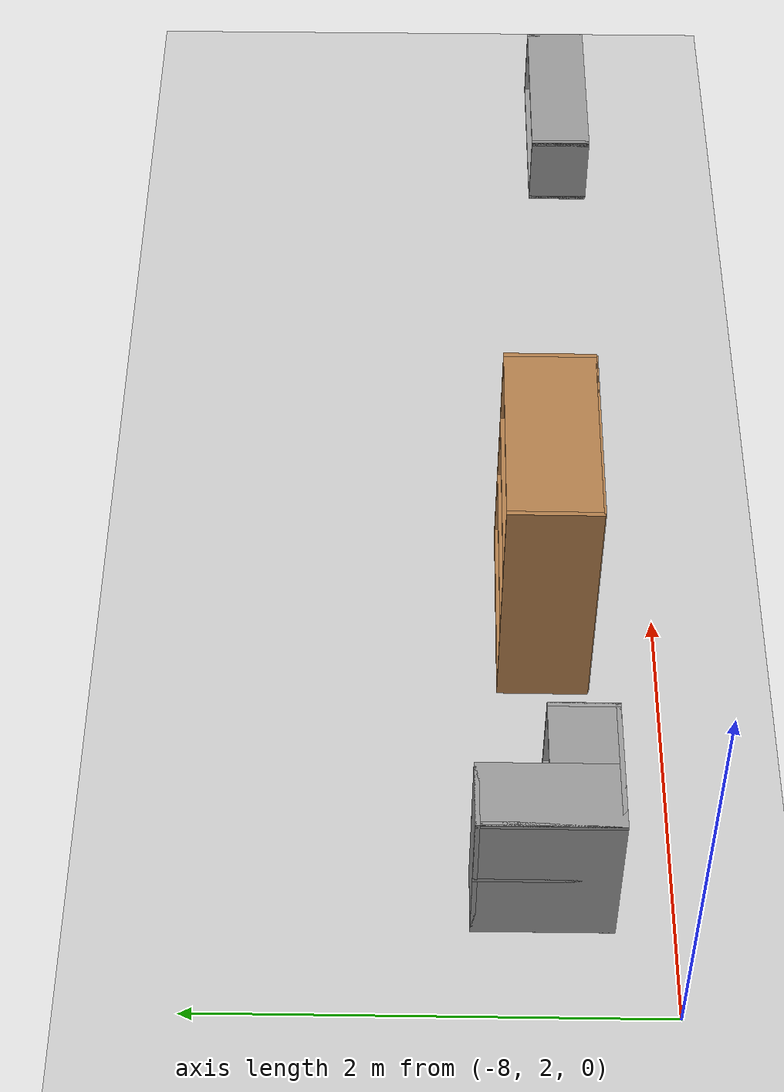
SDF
<sdf version="1.7">
 <world name="default">
  <model name="ground_plane">
   <static>1</static>
   <link name="link">
    <collision name="collision">
     <geometry><plane><normal>0 0 1</normal><size>100 100</size></plane></geometry>
     <surface><friction><ode><mu>100</mu><mu2>50</mu2></ode></friction></surface>
    </collision>
    <visual name="visual">
     <cast_shadows>0</cast_shadows>
     <geometry><plane><normal>0 0 1</normal><size>100 100</size></plane></geometry>
     <material>
      <script><uri>file://media/materials/scripts/gazebo.material</uri><name>Gazebo/Grey</name></script>
     </material>
    </visual>
   </link>
  </model>
  <model name="Wall_Cabinet_36x15W">
   <link name="Wall_0">
    <pose>0 0 0.01 0 -0 0</pose>
    <inertial>
     <mass>1.9796</mass>
     <inertia><ixx>0.0145</ixx><iyy>0.1511</iyy><izz>0.1367</izz><ixy>0</ixy><ixz>0</ixz><iyz>0</iyz></inertia>
    </inertial>
    <collision name="Wall_0_Collision"><geometry><box><size>0.91 0.296 0.02</size></box></geometry></collision>
    <visual name="Wall_0_Visual">
     <geometry><box><size>0.91 0.296 0.02</size></box></geometry>
     <material>
      <script><uri>file://media/materials/scripts/gazebo.material</uri><name>Gazebo/Grey</name></script>
      <ambient>1 1 1 1</ambient>
     </material>
    </visual>
   </link>
   <joint name="0_2" type="fixed">
    <pose>-0.455 0 0 0 -0 0</pose>
    <parent>Wall_2</parent>
    <child>Wall_0</child>
    <axis><xyz>0 0 1</xyz><limit><lower>-1e+16</lower><upper>1e+16</upper></limit></axis>
   </joint>
   <joint name="0_4" type="fixed">
    <pose>0.455 0 0 0 -0 0</pose>
    <parent>Wall_4</parent>
    <child>Wall_0</child>
    <axis><xyz>0 0 1</xyz><limit><lower>-1e+16</lower><upper>1e+16</upper></limit></axis>
   </joint>
   <joint name="0_8" type="fixed">
    <pose>0 -0.148 0 0 -0 0</pose>
    <parent>Wall_8</parent>
    <child>Wall_0</child>
    <axis><xyz>0 0 1</xyz><limit><lower>-1e+16</lower><upper>1e+16</upper></limit></axis>
   </joint>
   <link name="Wall_2">
    <pose>-0.445 0 0.192 0 -0 0</pose>
    <inertial>
     <mass>0.8353</mass>
     <inertia><ixx>0.0061</ixx><iyy>0.0164</iyy><izz>0.0103</izz><ixy>0</ixy><ixz>0</ixz><iyz>0</iyz></inertia>
    </inertial>
    <collision name="Wall_2_Collision"><geometry><box><size>0.02 0.296 0.384</size></box></geometry></collision>
    <visual name="Wall_2_Visual">
     <geometry><box><size>0.02 0.296 0.384</size></box></geometry>
     <material>
      <script><uri>file://media/materials/scripts/gazebo.material</uri><name>Gazebo/Grey</name></script>
      <ambient>1 1 1 1</ambient>
     </material>
    </visual>
   </link>
   <link name="Wall_4">
    <pose>0.445 0 0.192 0 -0 0</pose>
    <inertial>
     <mass>0.8353</mass>
     <inertia><ixx>0.0061</ixx><iyy>0.0164</iyy><izz>0.0103</izz><ixy>0</ixy><ixz>0</ixz><iyz>0</iyz></inertia>
    </inertial>
    <collision name="Wall_4_Collision"><geometry><box><size>0.02 0.296 0.384</size></box></geometry></collision>
    <visual name="Wall_4_Visual">
     <geometry><box><size>0.02 0.296 0.384</size></box></geometry>
     <material>
      <script><uri>file://media/materials/scripts/gazebo.material</uri><name>Gazebo/Grey</name></script>
      <ambient>1 1 1 1</ambient>
     </material>
    </visual>
   </link>
   <link name="Wall_6">
    <pose>0 0 0.374 0 -0 0</pose>
    <inertial>
     <mass>1.9796</mass>
     <inertia><ixx>0.0145</ixx><iyy>0.1511</iyy><izz>0.1367</izz><ixy>0</ixy><ixz>0</ixz><iyz>0</iyz></inertia>
    </inertial>
    <collision name="Wall_6_Collision"><geometry><box><size>0.91 0.296 0.02</size></box></geometry></collision>
    <visual name="Wall_6_Visual">
     <geometry><box><size>0.91 0.296 0.02</size></box></geometry>
     <material>
      <script><uri>file://media/materials/scripts/gazebo.material</uri><name>Gazebo/Grey</name></script>
      <ambient>1 1 1 1</ambient>
     </material>
    </visual>
   </link>
   <joint name="6_2" type="fixed">
    <pose>-0.455 0 0 0 -0 0</pose>
    <parent>Wall_2</parent>
    <child>Wall_6</child>
    <axis><xyz>0 0 1</xyz><limit><lower>-1e+16</lower><upper>1e+16</upper></limit></axis>
   </joint>
   <joint name="6_4" type="fixed">
    <pose>0.455 0 0 0 -0 0</pose>
    <parent>Wall_4</parent>
    <child>Wall_6</child>
    <axis><xyz>0 0 1</xyz><limit><lower>-1e+16</lower><upper>1e+16</upper></limit></axis>
   </joint>
   <joint name="6_8" type="fixed">
    <pose>0 -0.148 0 0 -0 0</pose>
    <parent>Wall_8</parent>
    <child>Wall_6</child>
    <axis><xyz>0 0 1</xyz><limit><lower>-1e+16</lower><upper>1e+16</upper></limit></axis>
   </joint>
   <link name="Wall_8">
    <pose>0 -0.138 0.19 0 -0 0</pose>
    <inertial>
     <mass>2.5302</mass>
     <inertia><ixx>0.0305</ixx><iyy>0.1732</iyy><izz>0.2035</izz><ixy>0</ixy><ixz>0</ixz><iyz>0</iyz></inertia>
    </inertial>
    <collision name="Wall_8_Collision"><geometry><box><size>0.906 0.02 0.38</size></box></geometry></collision>
    <visual name="Wall_8_Visual">
     <geometry><box><size>0.906 0.02 0.38</size></box></geometry>
     <material>
      <script><uri>file://media/materials/scripts/gazebo.material</uri><name>Gazebo/Grey</name></script>
      <ambient>1 1 1 1</ambient>
     </material>
    </visual>
   </link>
   <joint name="8_2" type="fixed">
    <pose>-0.453 0 0 0 -0 0</pose>
    <parent>Wall_2</parent>
    <child>Wall_8</child>
    <axis><xyz>0 1 0</xyz><limit><lower>-1e+16</lower><upper>1e+16</upper></limit></axis>
   </joint>
   <joint name="8_4" type="fixed">
    <pose>0.453 0 0 0 -0 0</pose>
    <parent>Wall_4</parent>
    <child>Wall_8</child>
    <axis><xyz>0 1 0</xyz><limit><lower>-1e+16</lower><upper>1e+16</upper></limit></axis>
   </joint>
   <static>1</static>
   <pose>-2.68214 2.32688 0 0 -0 0</pose>
  </model>
  <model name="Wall_Cabinet_Coin_24x30W_clone">
   <link name="Wall_10">
    <pose>0.286 -0.148 0.384 0 -0 0</pose>
    <inertial>
     <mass>2.1259</mass>
     <inertia><ixx>0.0158</ixx><iyy>0.1202</iyy><izz>0.1046</izz><ixy>0</ixy><ixz>0</ixz><iyz>0</iyz></inertia>
    </inertial>
    <collision name="Wall_10_Collision"><geometry><box><size>0.02 0.296 0.768</size></box></geometry></collision>
    <visual name="Wall_10_Visual">
     <geometry><box><size>0.02 0.296 0.768</size></box></geometry>
     <material>
      <script><uri>file://media/materials/scripts/gazebo.material</uri><name>Gazebo/Grey</name></script>
      <ambient>1 1 1 1</ambient>
     </material>
    </visual>
   </link>
   <joint name="10_16" type="fixed">
    <pose>0 0 -0.374 0 -0 0</pose>
    <parent>Wall_16</parent>
    <child>Wall_10</child>
    <axis><xyz>1 0 0</xyz><limit><lower>-1e+16</lower><upper>1e+16</upper></limit></axis>
   </joint>
   <joint name="10_14" type="fixed">
    <parent>Wall_14</parent>
    <child>Wall_10</child>
    <axis><xyz>1 0 0</xyz><limit><lower>-1e+16</lower><upper>1e+16</upper></limit></axis>
   </joint>
   <joint name="10_12" type="fixed">
    <pose>0 0 0.374 0 -0 0</pose>
    <parent>Wall_12</parent>
    <child>Wall_10</child>
    <axis><xyz>1 0 0</xyz><limit><lower>-1e+16</lower><upper>1e+16</upper></limit></axis>
   </joint>
   <joint name="10_29" type="fixed">
    <pose>0 -0.148 0 0 -0 0</pose>
    <parent>Wall_29</parent>
    <child>Wall_10</child>
    <axis><xyz>1 0 0</xyz><limit><lower>-1e+16</lower><upper>1e+16</upper></limit></axis>
   </joint>
   <link name="Wall_12">
    <pose>0.148 -0.148 0.758 0 -0 0</pose>
    <inertial>
     <mass>0.8802</mass>
     <inertia><ixx>0.0065</ixx><iyy>0.0139</iyy><izz>0.0074</izz><ixy>0</ixy><ixz>0</ixz><iyz>0</iyz></inertia>
    </inertial>
    <collision name="Wall_12_Collision"><geometry><box><size>0.296 0.296 0.02</size></box></geometry></collision>
    <visual name="Wall_12_Visual">
     <geometry><box><size>0.296 0.296 0.02</size></box></geometry>
     <material>
      <script><uri>file://media/materials/scripts/gazebo.material</uri><name>Gazebo/Grey</name></script>
      <ambient>1 1 1 1</ambient>
     </material>
    </visual>
   </link>
   <joint name="12_29" type="fixed">
    <pose>0 -0.148 0 0 -0 0</pose>
    <parent>Wall_29</parent>
    <child>Wall_12</child>
    <axis><xyz>0 0 1</xyz><limit><lower>-1e+16</lower><upper>1e+16</upper></limit></axis>
   </joint>
   <link name="Wall_14">
    <pose>0.148 -0.148 0.384 0 -0 0</pose>
    <inertial>
     <mass>0.8802</mass>
     <inertia><ixx>0.0065</ixx><iyy>0.0139</iyy><izz>0.0074</izz><ixy>0</ixy><ixz>0</ixz><iyz>0</iyz></inertia>
    </inertial>
    <collision name="Wall_14_Collision"><geometry><box><size>0.296 0.296 0.02</size></box></geometry></collision>
    <visual name="Wall_14_Visual">
     <geometry><box><size>0.296 0.296 0.02</size></box></geometry>
     <material>
      <script><uri>file://media/materials/scripts/gazebo.material</uri><name>Gazebo/Grey</name></script>
      <ambient>1 1 1 1</ambient>
     </material>
    </visual>
   </link>
   <joint name="14_29" type="fixed">
    <pose>0 -0.148 0 0 -0 0</pose>
    <parent>Wall_29</parent>
    <child>Wall_14</child>
    <axis><xyz>0 1 0</xyz><limit><lower>-1e+16</lower><upper>1e+16</upper></limit></axis>
   </joint>
   <link name="Wall_16">
    <pose>0.148 -0.148 0.01 0 -0 0</pose>
    <inertial>
     <mass>0.8802</mass>
     <inertia><ixx>0.0065</ixx><iyy>0.0139</iyy><izz>0.0074</izz><ixy>0</ixy><ixz>0</ixz><iyz>0</iyz></inertia>
    </inertial>
    <collision name="Wall_16_Collision"><geometry><box><size>0.296 0.296 0.02</size></box></geometry></collision>
    <visual name="Wall_16_Visual">
     <geometry><box><size>0.296 0.296 0.02</size></box></geometry>
     <material>
      <script><uri>file://media/materials/scripts/gazebo.material</uri><name>Gazebo/Grey</name></script>
      <ambient>1 1 1 1</ambient>
     </material>
    </visual>
   </link>
   <joint name="16_29" type="fixed">
    <pose>0 -0.148 0 0 -0 0</pose>
    <parent>Wall_29</parent>
    <child>Wall_16</child>
    <axis><xyz>0 1 0</xyz><limit><lower>-1e+16</lower><upper>1e+16</upper></limit></axis>
   </joint>
   <link name="Wall_18">
    <pose>-0.148 0 0.01 0 -0 0</pose>
    <inertial>
     <mass>1.6525</mass>
     <inertia><ixx>0.0491</ixx><iyy>0.0613</iyy><izz>0.0123</izz><ixy>0</ixy><ixz>0</ixz><iyz>0</iyz></inertia>
    </inertial>
    <collision name="Wall_18_Collision"><geometry><box><size>0.296 0.592 0.02</size></box></geometry></collision>
    <visual name="Wall_18_Visual">
     <geometry><box><size>0.296 0.592 0.02</size></box></geometry>
     <material>
      <script><uri>file://media/materials/scripts/gazebo.material</uri><name>Gazebo/Grey</name></script>
      <ambient>1 1 1 1</ambient>
     </material>
    </visual>
   </link>
   <joint name="18_16" type="fixed">
    <pose>0.148 -0.148 0 0 -0 0</pose>
    <parent>Wall_16</parent>
    <child>Wall_18</child>
    <axis><xyz>1 0 0</xyz><limit><lower>-1e+16</lower><upper>1e+16</upper></limit></axis>
   </joint>
   <joint name="18_29" type="fixed">
    <pose>0 -0.296 0 0 -0 0</pose>
    <parent>Wall_29</parent>
    <child>Wall_18</child>
    <axis><xyz>0 1 0</xyz><limit><lower>-1e+16</lower><upper>1e+16</upper></limit></axis>
   </joint>
   <joint name="18_27" type="fixed">
    <pose>-0.148 0 0 0 -0 0</pose>
    <parent>Wall_27</parent>
    <child>Wall_18</child>
    <axis><xyz>1 0 0</xyz><limit><lower>-1e+16</lower><upper>1e+16</upper></limit></axis>
   </joint>
   <joint name="18_30" type="fixed">
    <pose>0 0.296 0 0 -0 0</pose>
    <parent>Wall_30</parent>
    <child>Wall_18</child>
    <axis><xyz>0 1 0</xyz><limit><lower>-1e+16</lower><upper>1e+16</upper></limit></axis>
   </joint>
   <link name="Wall_20">
    <pose>-0.148 0 0.384 0 -0 0</pose>
    <inertial>
     <mass>1.6525</mass>
     <inertia><ixx>0.0491</ixx><iyy>0.0613</iyy><izz>0.0123</izz><ixy>0</ixy><ixz>0</ixz><iyz>0</iyz></inertia>
    </inertial>
    <collision name="Wall_20_Collision"><geometry><box><size>0.296 0.592 0.02</size></box></geometry></collision>
    <visual name="Wall_20_Visual">
     <geometry><box><size>0.296 0.592 0.02</size></box></geometry>
     <material>
      <script><uri>file://media/materials/scripts/gazebo.material</uri><name>Gazebo/Grey</name></script>
      <ambient>1 1 1 1</ambient>
     </material>
    </visual>
   </link>
   <joint name="20_14" type="fixed">
    <pose>0.148 -0.148 0 0 -0 0</pose>
    <parent>Wall_14</parent>
    <child>Wall_20</child>
    <axis><xyz>1 0 0</xyz><limit><lower>-1e+16</lower><upper>1e+16</upper></limit></axis>
   </joint>
   <joint name="20_29" type="fixed">
    <pose>0 -0.296 0 0 -0 0</pose>
    <parent>Wall_29</parent>
    <child>Wall_20</child>
    <axis><xyz>0 1 0</xyz><limit><lower>-1e+16</lower><upper>1e+16</upper></limit></axis>
   </joint>
   <joint name="20_27" type="fixed">
    <pose>-0.148 0 0 0 -0 0</pose>
    <parent>Wall_27</parent>
    <child>Wall_20</child>
    <axis><xyz>1 0 0</xyz><limit><lower>-1e+16</lower><upper>1e+16</upper></limit></axis>
   </joint>
   <joint name="20_30" type="fixed">
    <pose>0 0.296 0 0 -0 0</pose>
    <parent>Wall_30</parent>
    <child>Wall_20</child>
    <axis><xyz>0 1 0</xyz><limit><lower>-1e+16</lower><upper>1e+16</upper></limit></axis>
   </joint>
   <link name="Wall_22">
    <pose>-0.148 0 0.758 0 -0 0</pose>
    <inertial>
     <mass>1.6525</mass>
     <inertia><ixx>0.0491</ixx><iyy>0.0613</iyy><izz>0.0123</izz><ixy>0</ixy><ixz>0</ixz><iyz>0</iyz></inertia>
    </inertial>
    <collision name="Wall_22_Collision"><geometry><box><size>0.296 0.592 0.02</size></box></geometry></collision>
    <visual name="Wall_22_Visual">
     <geometry><box><size>0.296 0.592 0.02</size></box></geometry>
     <material>
      <script><uri>file://media/materials/scripts/gazebo.material</uri><name>Gazebo/Grey</name></script>
      <ambient>1 1 1 1</ambient>
     </material>
    </visual>
   </link>
   <joint name="22_12" type="fixed">
    <pose>0.148 -0.148 0 0 -0 0</pose>
    <parent>Wall_12</parent>
    <child>Wall_22</child>
    <axis><xyz>1 0 0</xyz><limit><lower>-1e+16</lower><upper>1e+16</upper></limit></axis>
   </joint>
   <joint name="22_29" type="fixed">
    <pose>0 -0.296 0 0 -0 0</pose>
    <parent>Wall_29</parent>
    <child>Wall_22</child>
    <axis><xyz>0 1 0</xyz><limit><lower>-1e+16</lower><upper>1e+16</upper></limit></axis>
   </joint>
   <joint name="22_27" type="fixed">
    <pose>-0.148 0 0 0 -0 0</pose>
    <parent>Wall_27</parent>
    <child>Wall_22</child>
    <axis><xyz>1 0 0</xyz><limit><lower>-1e+16</lower><upper>1e+16</upper></limit></axis>
   </joint>
   <joint name="22_30" type="fixed">
    <pose>0 0.296 0 0 -0 0</pose>
    <parent>Wall_30</parent>
    <child>Wall_22</child>
    <axis><xyz>0 1 0</xyz><limit><lower>-1e+16</lower><upper>1e+16</upper></limit></axis>
   </joint>
   <link name="Wall_27">
    <pose>-0.286 0 0.384 0 -0 0</pose>
    <inertial>
     <mass>4.2589</mass>
     <inertia><ixx>0.1266</ixx><iyy>0.3358</iyy><izz>0.2095</izz><ixy>0</ixy><ixz>0</ixz><iyz>0</iyz></inertia>
    </inertial>
    <collision name="Wall_27_Collision"><geometry><box><size>0.02 0.592 0.768</size></box></geometry></collision>
    <visual name="Wall_27_Visual">
     <geometry><box><size>0.02 0.592 0.768</size></box></geometry>
     <material>
      <script><uri>file://media/materials/scripts/gazebo.material</uri><name>Gazebo/Grey</name></script>
      <ambient>1 1 1 1</ambient>
     </material>
    </visual>
   </link>
   <joint name="27_30" type="fixed">
    <pose>0 0.296 0 0 -0 0</pose>
    <parent>Wall_30</parent>
    <child>Wall_27</child>
    <axis><xyz>0 1 0</xyz><limit><lower>-1e+16</lower><upper>1e+16</upper></limit></axis>
   </joint>
   <link name="Wall_29">
    <pose>0 -0.286 0.384 0 -0 0</pose>
    <inertial>
     <mass>4.3176</mass>
     <inertia><ixx>0.134</ixx><iyy>0.2091</iyy><izz>0.3428</izz><ixy>0</ixy><ixz>0</ixz><iyz>0</iyz></inertia>
    </inertial>
    <collision name="Wall_29_Collision"><geometry><box><size>0.592 0.02 0.768</size></box></geometry></collision>
    <visual name="Wall_29_Visual">
     <geometry><box><size>0.592 0.02 0.768</size></box></geometry>
     <material>
      <script><uri>file://media/materials/scripts/gazebo.material</uri><name>Gazebo/Grey</name></script>
      <ambient>1 1 1 1</ambient>
     </material>
    </visual>
   </link>
   <link name="Wall_30">
    <pose>-0.148 0.286 0.384 0 -0 0</pose>
    <inertial>
     <mass>2.1093</mass>
     <inertia><ixx>0.1021</ixx><iyy>0.0157</iyy><izz>0.1177</izz><ixy>0</ixy><ixz>0</ixz><iyz>0</iyz></inertia>
    </inertial>
    <collision name="Wall_30_Collision"><geometry><box><size>0.296 0.02 0.768</size></box></geometry></collision>
    <visual name="Wall_30_Visual">
     <geometry><box><size>0.296 0.02 0.768</size></box></geometry>
     <material>
      <script><uri>file://media/materials/scripts/gazebo.material</uri><name>Gazebo/Grey</name></script>
      <ambient>1 1 1 1</ambient>
     </material>
    </visual>
   </link>
   <static>1</static>
   <pose>-7.31291 2.54083 0 0 -0 0</pose>
  </model>
  <model name="bookshelf">
   <static>1</static>
   <link name="link">
    <inertial><mass>1</mass></inertial>
    <collision name="back">
     <pose>0 0.005 0.6 0 -0 0</pose>
     <geometry><box><size>0.9 0.01 1.2</size></box></geometry>
    </collision>
    <visual name="visual1">
     <pose>0 0.005 0.6 0 -0 0</pose>
     <geometry><box><size>0.9 0.01 1.2</size></box></geometry>
     <material>
      <script><uri>file://media/materials/scripts/gazebo.material</uri><name>Gazebo/Wood</name></script>
     </material>
    </visual>
    <collision name="left_side">
     <pose>0.45 -0.195 0.6 0 -0 0</pose>
     <geometry><box><size>0.02 0.4 1.2</size></box></geometry>
    </collision>
    <visual name="visual2">
     <pose>0.45 -0.195 0.6 0 -0 0</pose>
     <geometry><box><size>0.02 0.4 1.2</size></box></geometry>
     <material>
      <script><uri>file://media/materials/scripts/gazebo.material</uri><name>Gazebo/Wood</name></script>
     </material>
    </visual>
    <collision name="right_side">
     <pose>-0.45 -0.195 0.6 0 -0 0</pose>
     <geometry><box><size>0.02 0.4 1.2</size></box></geometry>
    </collision>
    <visual name="visual3">
     <pose>-0.45 -0.195 0.6 0 -0 0</pose>
     <geometry><box><size>0.02 0.4 1.2</size></box></geometry>
     <material>
      <script><uri>file://media/materials/scripts/gazebo.material</uri><name>Gazebo/Wood</name></script>
     </material>
    </visual>
    <collision name="bottom">
     <pose>0 -0.195 0.03 0 -0 0</pose>
     <geometry><box><size>0.88 0.4 0.06</size></box></geometry>
    </collision>
    <visual name="visual4">
     <pose>0 -0.195 0.03 0 -0 0</pose>
     <geometry><box><size>0.88 0.4 0.06</size></box></geometry>
     <material>
      <script><uri>file://media/materials/scripts/gazebo.material</uri><name>Gazebo/Wood</name></script>
     </material>
    </visual>
    <collision name="top">
     <pose>0 -0.195 1.19 0 -0 0</pose>
     <geometry><box><size>0.88 0.4 0.02</size></box></geometry>
    </collision>
    <visual name="visual5">
     <pose>0 -0.195 1.19 0 -0 0</pose>
     <geometry><box><size>0.88 0.4 0.02</size></box></geometry>
     <material>
      <script><uri>file://media/materials/scripts/gazebo.material</uri><name>Gazebo/Wood</name></script>
     </material>
    </visual>
    <collision name="low_shelf">
     <pose>0 -0.195 0.43 0 -0 0</pose>
     <geometry><box><size>0.88 0.4 0.02</size></box></geometry>
    </collision>
    <visual name="visual6">
     <pose>0 -0.195 0.43 0 -0 0</pose>
     <geometry><box><size>0.88 0.4 0.02</size></box></geometry>
     <material>
      <script><uri>file://media/materials/scripts/gazebo.material</uri><name>Gazebo/Wood</name></script>
     </material>
    </visual>
    <collision name="high_shelf">
     <pose>0 -0.195 0.8 0 -0 0</pose>
     <geometry><box><size>0.88 0.4 0.02</size></box></geometry>
    </collision>
    <visual name="visual7">
     <pose>0 -0.195 0.8 0 -0 0</pose>
     <geometry><box><size>0.88 0.4 0.02</size></box></geometry>
     <material>
      <script><uri>file://media/materials/scripts/gazebo.material</uri><name>Gazebo/Wood</name></script>
     </material>
    </visual>
   </link>
   <pose>-5.9436 2.30778 0 0 -0 3.13564</pose>
  </model>
 </world>
</sdf>
